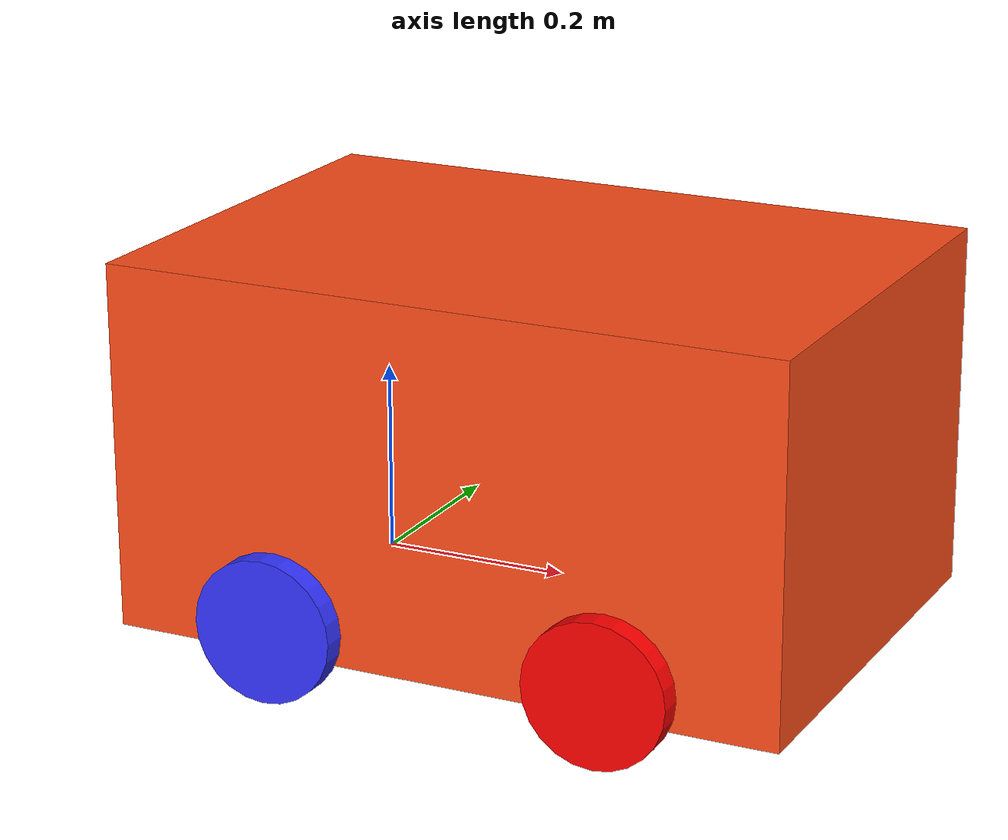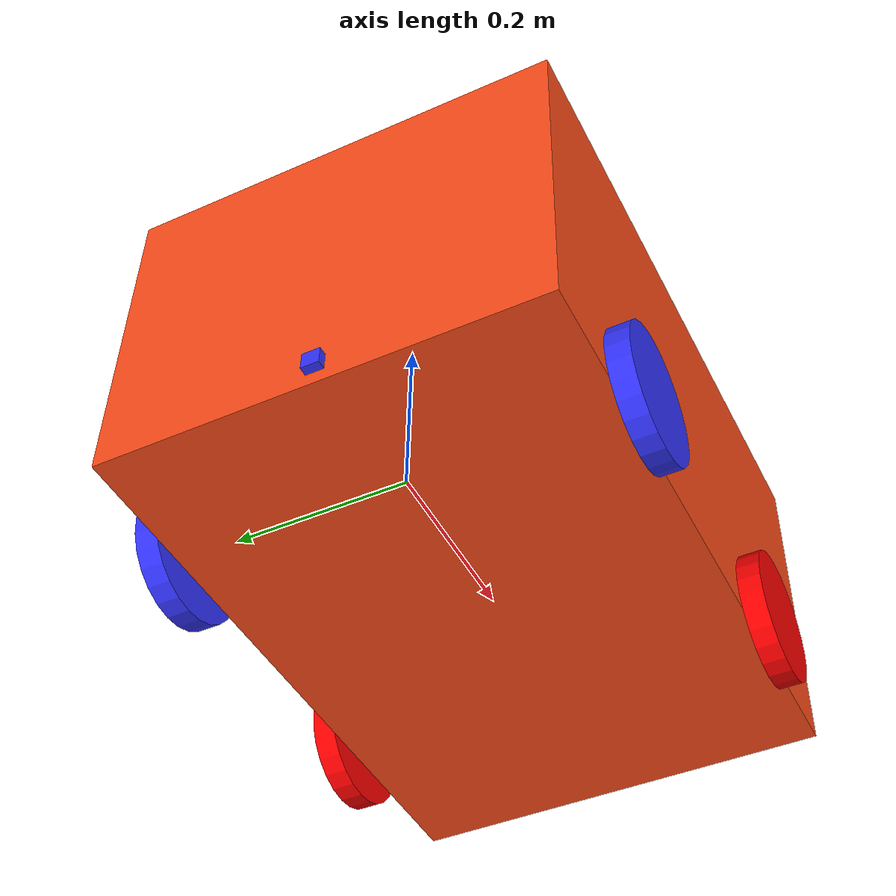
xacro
<?xml version="1.0"?>
<robot xmlns:xacro="http://www.ros.org/wiki/xacro"  name="robot">

    <xacro:arg name="use_ros2_control" default="true"/>
    <xacro:arg name="sim_mode" default="false"/>

    <xacro:include filename="robot_core.xacro" />

    <xacro:if value="$(arg use_ros2_control)">
        <xacro:include filename="ros2_control.xacro" />
    </xacro:if>
    <xacro:unless value="$(arg use_ros2_control)">
        <xacro:include filename="gazebo_control.xacro" />
    </xacro:unless>

  <xacro:include filename="imu.xacro" />
</robot>

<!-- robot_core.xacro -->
<robot xmlns:xacro="http://www.ros.org/wiki/xacro" >

    <xacro:include filename="inertial_macros.xacro"/>

    <xacro:property name="chassis_length" value="0.72644"/>
    <xacro:property name="chassis_width" value="0.49784"/>
    <xacro:property name="chassis_height" value="0.38608"/>
    <xacro:property name="chassis_mass" value="1.0"/>
    <xacro:property name="wheel_radius" value="0.0762"/>
    <xacro:property name="wheel_thickness" value="0.026"/>
    <xacro:property name="wheel_mass" value="0.05"/>

    <xacro:property name="wheel_offset_x" value="0.18161"/>
    <xacro:property name="wheel_offset_y" value="0.26192"/>
    <xacro:property name="wheel_offset_z" value="0.033"/>
    <xacro:property name="front_wheel_offset_x" value="0.36322"/>

    <material name="white">
        <color rgba="1 1 1 1" />
    </material>

    <material name="orange">
        <color rgba="1 0.3 0.1 1"/>
    </material>

    <material name="blue">
        <color rgba="0.2 0.2 1 1"/>
    </material>

    <material name="black">
        <color rgba="0 0 0 1"/>
    </material>

    <material name="red">
        <color rgba="1 0 0 1"/>
    </material>

    <!-- BASE LINK -->

    <link name="base_link">

    </link>

    <!-- BASE_FOOTPRINT LINK -->

    <joint name="base_footprint_joint" type="fixed">
        <parent link="base_link"/>
        <child link="base_footprint"/>
        <origin xyz="0 0 0" rpy="0 0 0"/>
    </joint>

    <link name="base_footprint">
    </link>

    <!-- CHASSIS LINK -->

    <joint name="chassis_joint" type="fixed">
        <parent link="base_link"/>
        <child link="chassis"/>
        <origin xyz="${-wheel_offset_x} 0 ${-wheel_offset_z}"/>
    </joint>

    <link name="chassis">
        <visual>
            <origin xyz="${chassis_length/2} 0 ${chassis_height/2}"/>
            <geometry>
                <box size="${chassis_length} ${chassis_width} ${chassis_height}"/>
            </geometry>
            <material name="orange"/>
        </visual>
        <collision>
            <origin xyz="${chassis_length/2} 0 ${chassis_height/2}"/>
            <geometry>
                <box size="${chassis_length} ${chassis_width} ${chassis_height}"/>
            </geometry>
        </collision>
        <xacro:inertial_box mass="0.5" x="${chassis_length}" y="${chassis_width}" z="${chassis_height}">
            <origin xyz="${chassis_length/2} 0 ${chassis_height/2}" rpy="0 0 0"/>
        </xacro:inertial_box>
    </link>

    <gazebo reference="chassis">
        <material>Gazebo/Orange</material>
    </gazebo>

    <!-- front left steering -->

    <link name="front_left_wheel">
        <visual>
            <geometry>
                <cylinder radius="${wheel_radius}" length="${wheel_thickness}"/>
            </geometry>
            <material name="red"/>
        </visual>
        <collision>
            <geometry>
                <sphere radius="${wheel_radius}"/>
            </geometry>
        </collision>
        <xacro:inertial_cylinder mass="${wheel_mass}" length="${wheel_thickness}" radius="${wheel_radius}">
            <origin xyz="0 0 0" rpy="0 0 0"/>
        </xacro:inertial_cylinder>
    </link>
    <gazebo reference="front_left_wheel">
    <mu1 value="2.0"/>
    <mu2 value="2.0"/>
    <kp  value="10000000.0" />
    <kd  value="1.0" />
    <fdir1 value="0 1 0"/>
    <material>Gazebo/Blue</material>
  </gazebo>

    <link name="left_wheel_assembly">
		<collision>
		  <origin xyz="0 0 0" rpy="0 1.5708 1.5708" />
		  <geometry>
		   <cylinder length="0.001" radius="0.04"/>
		  </geometry>
		</collision>

		<visual>
		  <origin xyz="0 0 0" rpy="0 1.5708 1.5708" />
		  <geometry>
			<cylinder length="0.001" radius="0.04"/>
		  </geometry>
		  <material name="white"/>
		</visual>

		<xacro:inertial_cylinder mass="${wheel_mass}" length="${wheel_thickness}" radius="${wheel_radius}">
            <origin xyz="0 0 0" rpy="0 0 0"/>
        </xacro:inertial_cylinder>
	</link>

  <gazebo reference="left_wheel_assembly">
    <mu1 value="2.0"/>
    <mu2 value="2.0"/>
    <kp  value="10000000.0" />
    <kd  value="1.0" />
    <fdir1 value="0 1 0"/>
    <material>Gazebo/White</material>
  </gazebo>

    <joint name="left_wheel_hinge" type="revolute">
        <parent link="base_link"/>
        <child link="left_wheel_assembly"/>
        <origin xyz="${front_wheel_offset_x} ${wheel_offset_y} 0" rpy="0 0 0" />
        <axis xyz="0 0 1" rpy="0 0 0" />
        <limit lower="-0.6" upper="0.6" velocity="1.0" effort="25"/>
    </joint>

    <!-- Front Right Steering Joint -->
    <joint name="front_left_rotate" type="continuous">
        <parent link="left_wheel_assembly"/>
        <child link="front_left_wheel"/>
        <origin xyz="0 0 0" rpy="${pi/2} 0 0"/>
        <axis xyz="0 0 1"/> <!-- Rotates around z-axis -->
    </joint>

    <!-- Front Right Wheel -->
    <link name="front_right_wheel">
        <visual>
            <geometry>
                <cylinder radius="${wheel_radius}" length="${wheel_thickness}"/>
            </geometry>
            <material name="red"/>
        </visual>
        <collision>
            <geometry>
                <sphere radius="${wheel_radius}"/>
            </geometry>
        </collision>
        <xacro:inertial_cylinder mass="${wheel_mass}" length="${wheel_thickness}" radius="${wheel_radius}">
            <origin xyz="0 0 0" rpy="0 0 0"/>
        </xacro:inertial_cylinder>
    </link>
    <gazebo reference="front_right_wheel">
    <mu1 value="2.0"/>
    <mu2 value="2.0"/>
    <kp  value="10000000.0" />
    <kd  value="1.0" />
    <fdir1 value="0 1 0"/>
    <material>Gazebo/Blue</material>
  </gazebo>

    <link name="right_wheel_assembly">
		<collision>
		  <origin xyz="0 0 0" rpy="0 1.5708 1.5708" />
		  <geometry>
		   <cylinder length="0.001" radius="0.04"/>
		  </geometry>
		</collision>

		<visual>
		  <origin xyz="0 0 0" rpy="0 1.5708 1.5708" />
		  <geometry>
			<cylinder length="0.001" radius="0.04"/>
		  </geometry>
		  <material name="white"/>
		</visual>

		<xacro:inertial_cylinder mass="${wheel_mass}" length="${wheel_thickness}" radius="${wheel_radius}">
            <origin xyz="0 0 0" rpy="0 0 0"/>
        </xacro:inertial_cylinder>
	</link>

  <gazebo reference="right_wheel_assembly">
    <mu1 value="2.0"/>
    <mu2 value="2.0"/>
    <kp  value="10000000.0" />
    <kd  value="1.0" />
    <fdir1 value="0 1 0"/>
    <material>Gazebo/White</material>
  </gazebo>

    <joint name="right_wheel_hinge" type="revolute">
        <parent link="base_link"/>
        <child link="right_wheel_assembly"/>
        <origin xyz="${front_wheel_offset_x} -${wheel_offset_y} 0" rpy="0 0 0" />
        <axis xyz="0 0 1" rpy="0 0 0" />
        <limit lower="-0.6" upper="0.6" velocity="1.0" effort="25"/>
    </joint>

    <!-- Front Right Steering Joint -->
    <joint name="front_right_rotate" type="continuous">
        <parent link="right_wheel_assembly"/>
        <child link="front_right_wheel"/>
        <origin xyz="0 0 0" rpy="${pi/2} 0 0"/>
        <axis xyz="0 0 1"/> <!-- Rotates around z-axis -->
    </joint>

    <!-- Gazebo Plugin -->

    <!-- Physics for Gazebo -->

    <gazebo reference="front_right_wheel">
        <material>Gazebo/Blue</material>
    </gazebo>

    <!-- LEFT WHEEL LINK -->

    <joint name="left_rear_wheel_joint" type="continuous">
        <parent link="base_link"/>
        <child link="left_wheel"/>
        <origin xyz="0 ${wheel_offset_y} 0" rpy="-${pi/2} 0 0" />
        <axis xyz="0 0 1"/>
    </joint>

    <link name="left_wheel">
        <visual>
            <geometry>
                <cylinder radius="${wheel_radius}" length="${wheel_thickness}"/>
            </geometry>
            <material name="blue"/>
        </visual>
        <collision>
            <geometry>
                <sphere radius="${wheel_radius}"/>
            </geometry>
        </collision>
        <xacro:inertial_cylinder mass="${wheel_mass}" length="${wheel_thickness}" radius="${wheel_radius}">
            <origin xyz="0 0 0" rpy="0 0 0"/>
        </xacro:inertial_cylinder>
    </link>

    <gazebo reference="left_wheel">
        <mu1 value="2.0"/>
        <mu2 value="2.0"/>
        <kp  value="10000000.0" />
        <kd  value="1.0" />
        <fdir1 value="0 1 0"/>
        <material>Gazebo/Blue</material>
    </gazebo>

    <!-- RIGHT WHEEL LINK -->

    <joint name="right_rear_wheel_joint" type="continuous">
        <parent link="base_link"/>
        <child link="right_wheel"/>
        <origin xyz="0 ${-wheel_offset_y} 0" rpy="${pi/2} 0 0" />
        <axis xyz="0 0 -1"/>
    </joint>

    <link name="right_wheel">
        <visual>
            <geometry>
                <cylinder radius="${wheel_radius}" length="${wheel_thickness}"/>
            </geometry>
            <material name="blue"/>
        </visual>
        <collision>
            <geometry>
                <sphere radius="${wheel_radius}"/>
            </geometry>
        </collision>
        <xacro:inertial_cylinder mass="${wheel_mass}" length="${wheel_thickness}" radius="${wheel_radius}">
            <origin xyz="0 0 0" rpy="0 0 0"/>
        </xacro:inertial_cylinder>
    </link>
    <gazebo reference="right_wheel">
    <mu1 value="2.0"/>
    <mu2 value="2.0"/>
    <kp  value="10000000.0" />
    <kd  value="1.0" />
    <fdir1 value="0 1 0"/>
    <material>Gazebo/Blue</material>
  </gazebo>

</robot>

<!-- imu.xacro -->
<robot xmlns:xacro="http://www.ros.org/wiki/xacro">
  <joint name="imu_joint" type="fixed">
    <parent link="chassis"/>
    <child link="imu_link"/>
    <origin xyz="0 0 0.025" rpy="0 0.005 0" />
  </joint>

  <link name="imu_link">
    <visual>
      <geometry>
        <box size="0.02 0.02 0.02" />
      </geometry>
      <material name="blue"/>
    </visual>
  </link>

  <gazebo reference="imu_link">
    <gravity>true</gravity>
    <sensor name="imu_sensor" type="imu">
      <always_on>true</always_on>
      <update_rate>100</update_rate>
      <visualize>true</visualize> <!-- Set to false if you don't want to visualize the IMU in Gazebo -->
      <plugin filename="libgazebo_ros_imu_sensor.so" name="imu_plugin">
        <topicName>imu</topicName>
        <bodyName>imu_link</bodyName>
        <updateRateHZ>100.0</updateRateHZ>
        <gaussianNoise>0.0</gaussianNoise> <!-- Adjust noise parameters according to your needs -->
        <xyzOffset>0 0 0</xyzOffset>
        <rpyOffset>0 0 0</rpyOffset>
        <frameName>imu_link</frameName>
        <initialOrientationAsReference>false</initialOrientationAsReference>
      </plugin>
    </sensor>
  </gazebo>
</robot>
